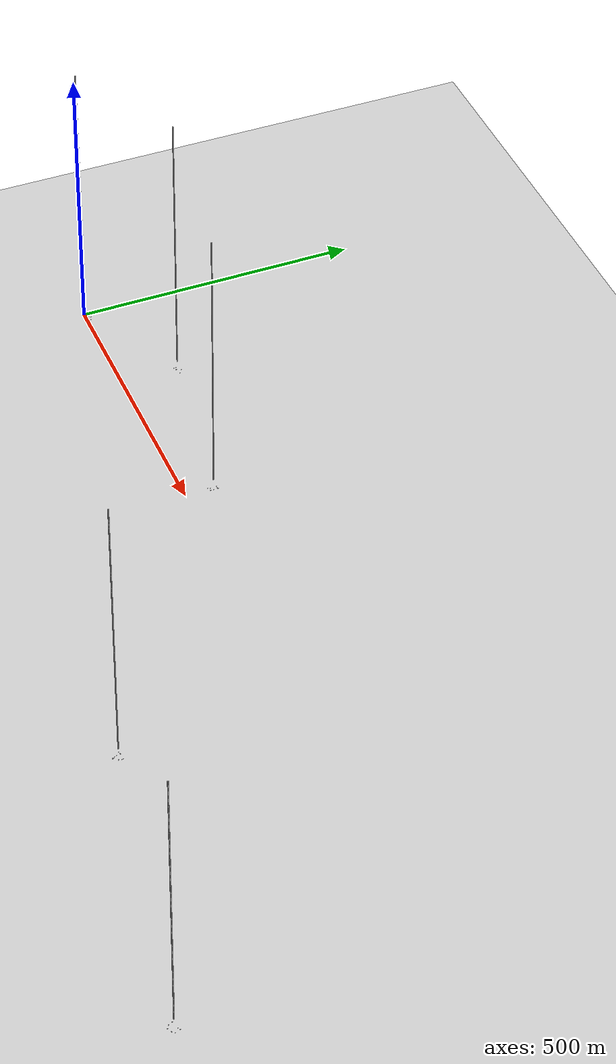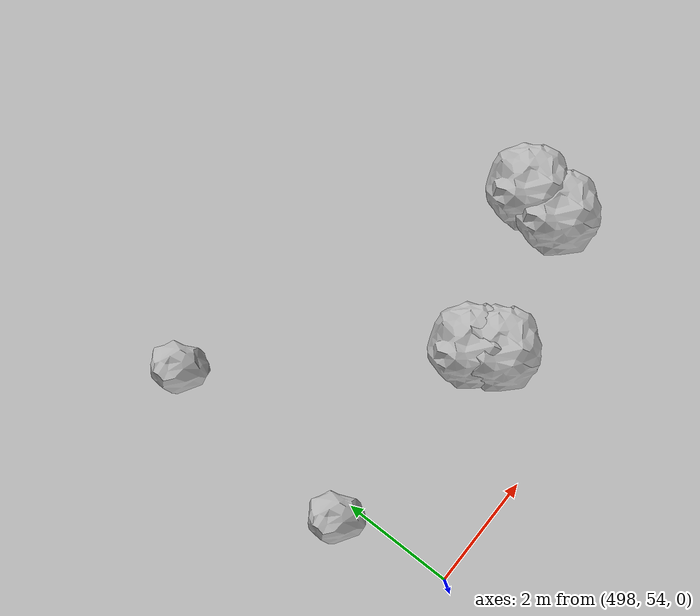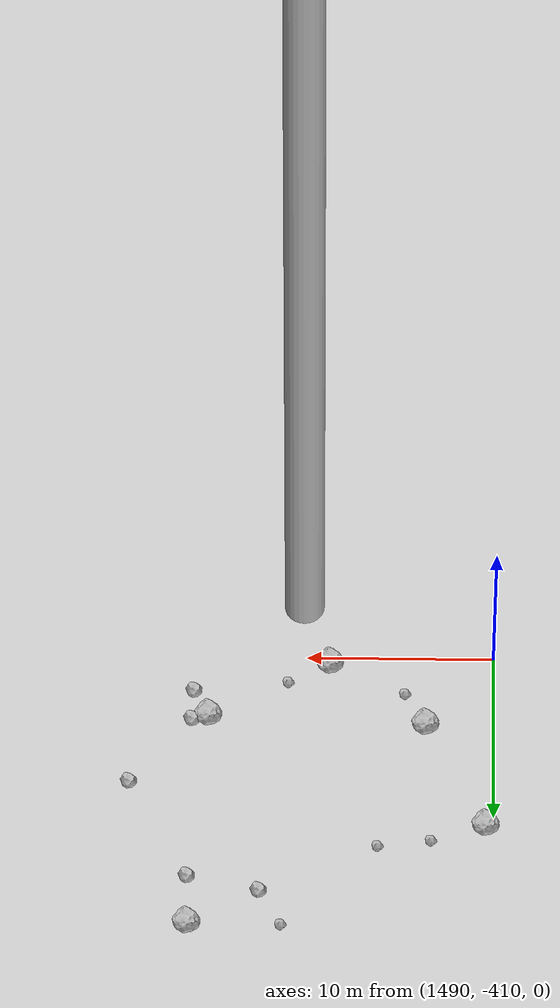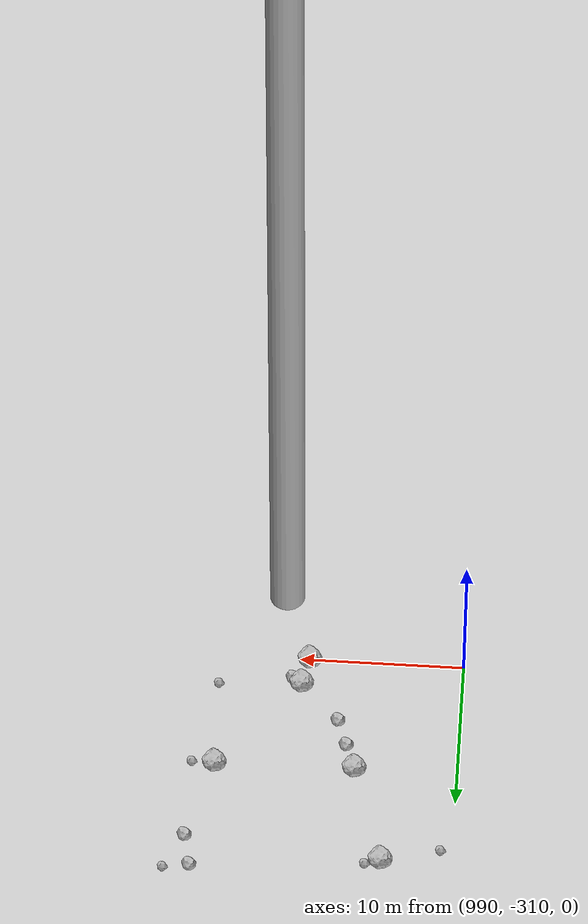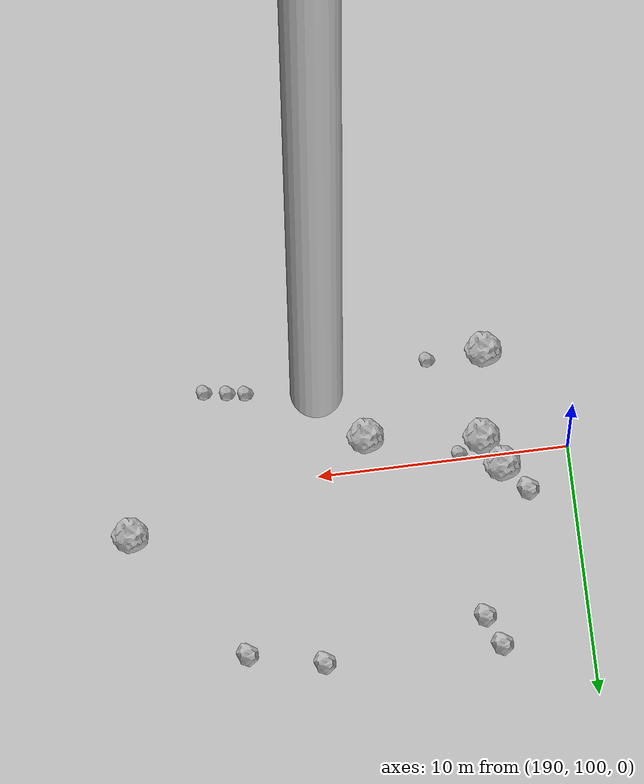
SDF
<?xml version="1.0" ?>
<sdf version="1.6">
  <world name="default">

    <include>
      <uri>model://custom_ground</uri>
    </include>

    <include>
      <uri>model://sun</uri>
    </include>

    <spherical_coordinates>
      <surface_model>EARTH_WGS84</surface_model>
      <latitude_deg>38.161479</latitude_deg>
      <longitude_deg>-122.454630</longitude_deg>
      <elevation>488.0</elevation>
      <heading_deg>90</heading_deg>
    </spherical_coordinates>

    <model name="rock1_0_0">
      <include>
        <uri>model://rock1</uri>
        <pose>17.58864847752816 3.502749681485138 0.5 0 0 0</pose>
      </include>
    </model>
    <model name="rock1_0_1">
      <include>
        <uri>model://rock1</uri>
        <pose>12.720555838358967 -3.9588461170873686 0.5 0 0 0</pose>
      </include>
    </model>
    <model name="rock1_0_2">
      <include>
        <uri>model://rock1</uri>
        <pose>6.574833561325775 7.145169942262072 0.5 0 0 0</pose>
      </include>
    </model>
    <model name="rock1_0_3">
      <include>
        <uri>model://rock1</uri>
        <pose>9.730616689046894 9.299395815691916 0.5 0 0 0</pose>
      </include>
    </model>
    <model name="rock1_0_4">
      <include>
        <uri>model://rock1</uri>
        <pose>17.212959086605263 6.805940155539073 0.5 0 0 0</pose>
      </include>
    </model>
    <model name="rock2_0_0">
      <include>
        <uri>model://rock2</uri>
        <pose>16.943542320547717 0.9548688483373073 0.3 0 0 0</pose>
      </include>
    </model>
    <model name="rock2_0_1">
      <include>
        <uri>model://rock2</uri>
        <pose>4.581283884447423 7.55076501288282 0.3 0 0 0</pose>
      </include>
    </model>
    <model name="rock2_0_2">
      <include>
        <uri>model://rock2</uri>
        <pose>3.979818597239322 6.274397383634366 0.3 0 0 0</pose>
      </include>
    </model>
    <model name="rock2_0_3">
      <include>
        <uri>model://rock2</uri>
        <pose>3.1229023112331444 -1.5430068112020408 0.3 0 0 0</pose>
      </include>
    </model>
    <model name="rock2_0_4">
      <include>
        <uri>model://rock2</uri>
        <pose>15.350783556887048 -2.6990842932690633 0.3 0 0 0</pose>
      </include>
    </model>
    <model name="rock3_0_0">
      <include>
        <uri>model://rock3</uri>
        <pose>5.890744639454226 -0.1348833850671909 0.2 0 0 0</pose>
      </include>
    </model>
    <model name="rock3_0_1">
      <include>
        <uri>model://rock3</uri>
        <pose>11.96083301426399 2.8007387089613545 0.2 0 0 0</pose>
      </include>
    </model>
    <model name="rock3_0_2">
      <include>
        <uri>model://rock3</uri>
        <pose>14.31242024357815 -8.37927276117928 0.2 0 0 0</pose>
      </include>
    </model>
    <model name="rock3_0_3">
      <include>
        <uri>model://rock3</uri>
        <pose>7.191953450341336 -1.033095083830231 0.2 0 0 0</pose>
      </include>
    </model>
    <model name="rock3_0_4">
      <include>
        <uri>model://rock3</uri>
        <pose>7.7132613863906085 0.9419645220741444 0.2 0 0 0</pose>
      </include>
    </model>
    <model name="rock1_1_0">
      <include>
        <uri>model://rock1</uri>
        <pose>197.94086359128934 98.6720633563513 0.5 0 0 0</pose>
      </include>
    </model>
    <model name="rock1_1_1">
      <include>
        <uri>model://rock1</uri>
        <pose>192.86722546107262 95.77512536248526 0.5 0 0 0</pose>
      </include>
    </model>
    <model name="rock1_1_2">
      <include>
        <uri>model://rock1</uri>
        <pose>193.36720478299878 99.23412357421468 0.5 0 0 0</pose>
      </include>
    </model>
    <model name="rock1_1_3">
      <include>
        <uri>model://rock1</uri>
        <pose>207.69902148922336 101.50080610312926 0.5 0 0 0</pose>
      </include>
    </model>
    <model name="rock1_1_4">
      <include>
        <uri>model://rock1</uri>
        <pose>192.68555078354657 100.42797205790117 0.5 0 0 0</pose>
      </include>
    </model>
    <model name="rock2_1_0">
      <include>
        <uri>model://rock2</uri>
        <pose>200.65078006767473 107.48063900372085 0.3 0 0 0</pose>
      </include>
    </model>
    <model name="rock2_1_1">
      <include>
        <uri>model://rock2</uri>
        <pose>193.57309304823445 107.58635970600452 0.3 0 0 0</pose>
      </include>
    </model>
    <model name="rock2_1_2">
      <include>
        <uri>model://rock2</uri>
        <pose>194.10392310842795 106.37073852343286 0.3 0 0 0</pose>
      </include>
    </model>
    <model name="rock2_1_3">
      <include>
        <uri>model://rock2</uri>
        <pose>203.65293680943515 106.78362571036328 0.3 0 0 0</pose>
      </include>
    </model>
    <model name="rock2_1_4">
      <include>
        <uri>model://rock2</uri>
        <pose>191.78122974376114 101.51626849273678 0.3 0 0 0</pose>
      </include>
    </model>
    <model name="rock3_1_0">
      <include>
        <uri>model://rock3</uri>
        <pose>202.44845904790995 96.31015187808936 0.2 0 0 0</pose>
      </include>
    </model>
    <model name="rock3_1_1">
      <include>
        <uri>model://rock3</uri>
        <pose>204.0766073891574 96.0713064236552 0.2 0 0 0</pose>
      </include>
    </model>
    <model name="rock3_1_2">
      <include>
        <uri>model://rock3</uri>
        <pose>195.11926531609058 95.83939145809697 0.2 0 0 0</pose>
      </include>
    </model>
    <model name="rock3_1_3">
      <include>
        <uri>model://rock3</uri>
        <pose>203.16644872004355 96.20661662788831 0.2 0 0 0</pose>
      </include>
    </model>
    <model name="rock3_1_4">
      <include>
        <uri>model://rock3</uri>
        <pose>194.3078466311183 99.73411960813081 0.2 0 0 0</pose>
      </include>
    </model>
    <model name="rock1_2_0">
      <include>
        <uri>model://rock1</uri>
        <pose>501.3828015635309 56.04824716220709 0.5 0 0 0</pose>
      </include>
    </model>
    <model name="rock1_2_1">
      <include>
        <uri>model://rock1</uri>
        <pose>501.63422565167207 55.654924036114096 0.5 0 0 0</pose>
      </include>
    </model>
    <model name="rock1_2_2">
      <include>
        <uri>model://rock1</uri>
        <pose>503.2673766850857 48.60847366712896 0.5 0 0 0</pose>
      </include>
    </model>
    <model name="rock1_2_3">
      <include>
        <uri>model://rock1</uri>
        <pose>504.06499886842244 56.26685208564027 0.5 0 0 0</pose>
      </include>
    </model>
    <model name="rock1_2_4">
      <include>
        <uri>model://rock1</uri>
        <pose>504.10178009027214 56.920076520106115 0.5 0 0 0</pose>
      </include>
    </model>
    <model name="rock2_2_0">
      <include>
        <uri>model://rock2</uri>
        <pose>503.6528413807184 43.732524862397405 0.3 0 0 0</pose>
      </include>
    </model>
    <model name="rock2_2_1">
      <include>
        <uri>model://rock2</uri>
        <pose>497.03547856474233 40.615057192244585 0.3 0 0 0</pose>
      </include>
    </model>
    <model name="rock2_2_2">
      <include>
        <uri>model://rock2</uri>
        <pose>497.723095752587 56.09072290813842 0.3 0 0 0</pose>
      </include>
    </model>
    <model name="rock2_2_3">
      <include>
        <uri>model://rock2</uri>
        <pose>503.4933978051403 42.75111574973568 0.3 0 0 0</pose>
      </include>
    </model>
    <model name="rock2_2_4">
      <include>
        <uri>model://rock2</uri>
        <pose>498.07843034659993 59.714417321661614 0.3 0 0 0</pose>
      </include>
    </model>
    <model name="rock3_2_0">
      <include>
        <uri>model://rock3</uri>
        <pose>497.99494946638913 44.92269973718498 0.2 0 0 0</pose>
      </include>
    </model>
    <model name="rock3_2_1">
      <include>
        <uri>model://rock3</uri>
        <pose>498.1296931422933 51.425603099642146 0.2 0 0 0</pose>
      </include>
    </model>
    <model name="rock3_2_2">
      <include>
        <uri>model://rock3</uri>
        <pose>509.58990731232194 47.81475337509572 0.2 0 0 0</pose>
      </include>
    </model>
    <model name="rock3_2_3">
      <include>
        <uri>model://rock3</uri>
        <pose>504.57693872662514 50.1345958913969 0.2 0 0 0</pose>
      </include>
    </model>
    <model name="rock3_2_4">
      <include>
        <uri>model://rock3</uri>
        <pose>507.9435080655785 53.9619850709276 0.2 0 0 0</pose>
      </include>
    </model>
    <model name="rock1_3_0">
      <include>
        <uri>model://rock1</uri>
        <pose>994.2603874783208 -295.4466257611117 0.5 0 0 0</pose>
      </include>
    </model>
    <model name="rock1_3_1">
      <include>
        <uri>model://rock1</uri>
        <pose>1004.6353208255263 -301.83632135625606 0.5 0 0 0</pose>
      </include>
    </model>
    <model name="rock1_3_2">
      <include>
        <uri>model://rock1</uri>
        <pose>999.7738977443131 -308.0361751747427 0.5 0 0 0</pose>
      </include>
    </model>
    <model name="rock1_3_3">
      <include>
        <uri>model://rock1</uri>
        <pose>996.2163664290078 -301.97685348332965 0.5 0 0 0</pose>
      </include>
    </model>
    <model name="rock1_3_4">
      <include>
        <uri>model://rock1</uri>
        <pose>999.3973651161625 -309.85782952982163 0.5 0 0 0</pose>
      </include>
    </model>
    <model name="rock2_3_0">
      <include>
        <uri>model://rock2</uri>
        <pose>997.4055839114409 -305.4857210771139 0.3 0 0 0</pose>
      </include>
    </model>
    <model name="rock2_3_1">
      <include>
        <uri>model://rock2</uri>
        <pose>1000.3283904019536 -308.46912898629313 0.3 0 0 0</pose>
      </include>
    </model>
    <model name="rock2_3_2">
      <include>
        <uri>model://rock2</uri>
        <pose>996.7978118395574 -303.7047347125987 0.3 0 0 0</pose>
      </include>
    </model>
    <model name="rock2_3_3">
      <include>
        <uri>model://rock2</uri>
        <pose>1006.0349731658758 -296.5461066952195 0.3 0 0 0</pose>
      </include>
    </model>
    <model name="rock2_3_4">
      <include>
        <uri>model://rock2</uri>
        <pose>1005.5962237722692 -294.4404542820878 0.3 0 0 0</pose>
      </include>
    </model>
    <model name="rock3_3_0">
      <include>
        <uri>model://rock3</uri>
        <pose>990.69006093788 -296.4387780127088 0.2 0 0 0</pose>
      </include>
    </model>
    <model name="rock3_3_1">
      <include>
        <uri>model://rock3</uri>
        <pose>995.1565114417033 -295.2278518845711 0.2 0 0 0</pose>
      </include>
    </model>
    <model name="rock3_3_2">
      <include>
        <uri>model://rock3</uri>
        <pose>1005.9694914465646 -301.9718729839063 0.2 0 0 0</pose>
      </include>
    </model>
    <model name="rock3_3_3">
      <include>
        <uri>model://rock3</uri>
        <pose>1004.7623454997765 -307.85193316264326 0.2 0 0 0</pose>
      </include>
    </model>
    <model name="rock3_3_4">
      <include>
        <uri>model://rock3</uri>
        <pose>1007.1363560296788 -294.2381117037257 0.2 0 0 0</pose>
      </include>
    </model>
    <model name="rock1_4_0">
      <include>
        <uri>model://rock1</uri>
        <pose>1493.6570233464718 -405.6841891783377 0.5 0 0 0</pose>
      </include>
    </model>
    <model name="rock1_4_1">
      <include>
        <uri>model://rock1</uri>
        <pose>1505.2537931948086 -406.1356222363596 0.5 0 0 0</pose>
      </include>
    </model>
    <model name="rock1_4_2">
      <include>
        <uri>model://rock1</uri>
        <pose>1490.4517972790554 -399.3721226565958 0.5 0 0 0</pose>
      </include>
    </model>
    <model name="rock1_4_3">
      <include>
        <uri>model://rock1</uri>
        <pose>1506.160382944806 -393.16455147102846 0.5 0 0 0</pose>
      </include>
    </model>
    <model name="rock1_4_4">
      <include>
        <uri>model://rock1</uri>
        <pose>1498.7841882822263 -409.5137313019395 0.5 0 0 0</pose>
      </include>
    </model>
    <model name="rock2_4_0">
      <include>
        <uri>model://rock2</uri>
        <pose>1502.4138089028038 -395.23313141890236 0.3 0 0 0</pose>
      </include>
    </model>
    <model name="rock2_4_1">
      <include>
        <uri>model://rock2</uri>
        <pose>1506.1243396753484 -405.9261343000995 0.3 0 0 0</pose>
      </include>
    </model>
    <model name="rock2_4_2">
      <include>
        <uri>model://rock2</uri>
        <pose>1509.4078890188432 -401.94805798312444 0.3 0 0 0</pose>
      </include>
    </model>
    <model name="rock2_4_3">
      <include>
        <uri>model://rock2</uri>
        <pose>1506.2130142090634 -396.09906610912674 0.3 0 0 0</pose>
      </include>
    </model>
    <model name="rock2_4_4">
      <include>
        <uri>model://rock2</uri>
        <pose>1506.0421648027436 -407.7292761504286 0.3 0 0 0</pose>
      </include>
    </model>
    <model name="rock3_4_0">
      <include>
        <uri>model://rock3</uri>
        <pose>1501.2051831020754 -393.20228938957206 0.2 0 0 0</pose>
      </include>
    </model>
    <model name="rock3_4_1">
      <include>
        <uri>model://rock3</uri>
        <pose>1493.3156406229828 -398.4802855701565 0.2 0 0 0</pose>
      </include>
    </model>
    <model name="rock3_4_2">
      <include>
        <uri>model://rock3</uri>
        <pose>1494.7283432082895 -407.6905847944362 0.2 0 0 0</pose>
      </include>
    </model>
    <model name="rock3_4_3">
      <include>
        <uri>model://rock3</uri>
        <pose>1496.1360452839097 -398.11027518873016 0.2 0 0 0</pose>
      </include>
    </model>
    <model name="rock3_4_4">
      <include>
        <uri>model://rock3</uri>
        <pose>1500.9749943846575 -408.3657762815107 0.2 0 0 0</pose>
      </include>
    </model>

    <model name="cylinder_1">
      <static>true</static>
      <link name="link">
        <visual name="visual">
          <geometry>
            <cylinder>
              <radius>1</radius>
              <length>500</length>
            </cylinder>
          </geometry>
        </visual>
      </link>
      <pose>10 0 270 0 0 0</pose>
    </model>

    <model name="cylinder_2">
      <static>true</static>
      <link name="link">
        <visual name="visual">
          <geometry>
            <cylinder>
              <radius>1</radius>
              <length>500</length>
            </cylinder>
          </geometry>
        </visual>
      </link>
      <pose>200 100 270 0 0 0</pose>
    </model>

    <model name="cylinder_3">
      <static>true</static>
      <link name="link">
        <visual name="visual">
          <geometry>
            <cylinder>
              <radius>1</radius>
              <length>500</length>
            </cylinder>
          </geometry>
        </visual>
      </link>
      <pose>500 50 270 0 0 0</pose>
    </model>

    <model name="cylinder_4">
      <static>true</static>
      <link name="link">
        <visual name="visual">
          <geometry>
            <cylinder>
              <radius>1</radius>
              <length>500</length>
            </cylinder>
          </geometry>
        </visual>
      </link>
      <pose>1000 -300 270 0 0 0</pose>
    </model>

    <model name="cylinder_5">
      <static>true</static>
      <link name="link">
        <visual name="visual">
          <geometry>
            <cylinder>
              <radius>1</radius>
              <length>500</length>
            </cylinder>
          </geometry>
        </visual>
      </link>
      <pose>1500 -400 270 0 0 0</pose>
    </model>

  </world>
</sdf>

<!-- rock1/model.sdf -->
<sdf version="1.6">
  <model name="rock1">
    <static>true</static> <!-- Set to true if the model should not move -->
    <pose>0 0 0 0 0 0</pose>

    <!--z offset is 0.5 for full scale-->

    <link name="link">
      <collision name="rock1_collision">
        <geometry>
          <mesh>
            <uri>model://meshes/rock1.dae</uri>
          </mesh>
        </geometry>
      </collision>
      <visual name="rock1_visual">
        <geometry>
          <mesh>
            <uri>model://meshes/rock1.dae</uri>
          </mesh>
        </geometry>
        <material>
          <script>
            <uri>model://materials/scripts/sand_pebbles.material</uri>
            <name>custom_ground/Image</name>
          </script>
        </material>
      </visual>
    </link>
  </model>
</sdf>

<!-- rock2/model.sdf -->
<sdf version="1.6">
  <model name="rock2">
    <static>true</static> <!-- Set to true if the model should not move -->
    <pose>0 0 0 0 0 0</pose>

    <!--z offset is 0.3 for full scale-->

    <link name="link">
      <collision name="rock2_collision">
        <geometry>
          <mesh>
            <uri>model://meshes/rock2.dae</uri>
          </mesh>
        </geometry>
      </collision>
      <visual name="rock2_visual">
        <geometry>
          <mesh>
            <uri>model://meshes/rock2.dae</uri>
          </mesh>
        </geometry>
        <material>
          <script>
            <uri>model://materials/scripts/sand_pebbles.material</uri>
            <name>custom_ground/Image</name>
          </script>
        </material>
      </visual>
    </link>
  </model>
</sdf>

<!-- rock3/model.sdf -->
<sdf version="1.6">
  <model name="rock3">
    <static>true</static> <!-- Set to true if the model should not move -->
    <pose>0 0 0 0 0 0</pose>

    <!--z offset is 0.2 for full scale-->

    <link name="link">
      <collision name="rock3_collision">
        <geometry>
          <mesh>
            <uri>model://meshes/rock3.dae</uri>
          </mesh>
        </geometry>
      </collision>
      <visual name="rock3_visual">
        <geometry>
          <mesh>
            <uri>model://meshes/rock3.dae</uri>
          </mesh>
        </geometry>
        <material>
          <script>
            <uri>model://materials/scripts/sand_pebbles.material</uri>
            <name>custom_ground/Image</name>
          </script>
        </material>
      </visual>
    </link>
  </model>
</sdf>

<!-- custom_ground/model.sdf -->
<sdf version="1.6">
  <model name="custom_ground">
    <static>true</static> <!-- Ground is static and immovable -->
    <link name="ground_link">
      <pose>240 0 0 0 0 0</pose> <!-- Position and orientation relative to the world -->
      <!-- Visual Representation -->
      <visual name="ground_visual">
        <geometry>
          <plane>
            <normal>0 0 1</normal> <!-- Upward facing plane -->
            <size>500 500</size> <!-- Size of the plane -->
          </plane>
        </geometry>
        <material>
          <script>
            <uri>model://materials/scripts/sand_pebbles.material</uri>
            <name>custom_ground/Image</name>
          </script>
        </material>
      </visual>

      <!-- Collision Representation -->
      <collision name="ground_collision">
        <geometry>
          <plane>
            <normal>0 0 1</normal>
            <size>100 100</size>
          </plane>
        </geometry>
      </collision>

    </link>
  </model>
</sdf>
